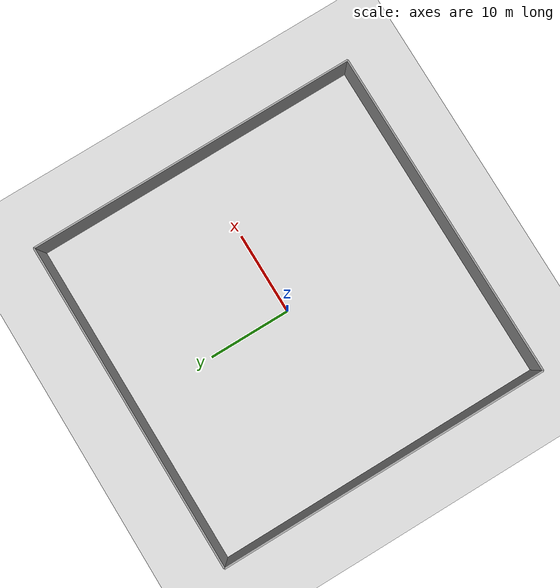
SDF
<?xml version='1.0' encoding='utf-8'?>
<sdf version="1.6">
    <world name="empty_world">
        <gravity>0 0 -9.8</gravity>
        <physics default="0" name="default_physics" type="ode">
            <max_step_size>0.01</max_step_size>
            <real_time_factor>1</real_time_factor>
            <real_time_update_rate>1000</real_time_update_rate>
            <ode>
                <solver>
                    <type>quick</type>
                    <iters>50</iters>
                    <sor>1.3</sor>
                </solver>
                <constraints>
                    <cfm>0.0</cfm>
                    <erp>0.2</erp>
                    <contact_max_correcting_vel>100.0</contact_max_correcting_vel>
                    <contact_surface_layer>0.001</contact_surface_layer>
                </constraints>
            </ode>
        </physics>

        <!-- Simple ground plane -->
        <model name="ground_plane">
            <static>true</static>
            <link name="link">
                <collision name="collision">
                    <geometry>
                        <plane>
                            <normal>0 0 1</normal>
                            <size>100 100</size>
                        </plane>
                    </geometry>
                </collision>
                <visual name="visual">
                    <geometry>
                        <plane>
                            <normal>0 0 1</normal>
                            <size>100 100</size>
                        </plane>
                    </geometry>
                    <material>
                        <ambient>0.8 0.8 0.8 1</ambient>
                        <diffuse>0.8 0.8 0.8 1</diffuse>
                        <specular>0.2 0.2 0.2 1</specular>
                    </material>
                </visual>
            </link>
        </model>

        <!-- Simple walls for testing -->
        <model name="wall_north">
            <static>true</static>
            <pose>0 20 2 0 0 0</pose>
            <link name="link">
                <collision name="collision">
                    <geometry>
                        <box>
                            <size>40 0.2 4</size>
                        </box>
                    </geometry>
                </collision>
                <visual name="visual">
                    <geometry>
                        <box>
                            <size>40 0.2 4</size>
                        </box>
                    </geometry>
                    <material>
                        <ambient>0.6 0.6 0.6 1</ambient>
                        <diffuse>0.6 0.6 0.6 1</diffuse>
                    </material>
                </visual>
            </link>
        </model>

        <model name="wall_south">
            <static>true</static>
            <pose>0 -20 2 0 0 0</pose>
            <link name="link">
                <collision name="collision">
                    <geometry>
                        <box>
                            <size>40 0.2 4</size>
                        </box>
                    </geometry>
                </collision>
                <visual name="visual">
                    <geometry>
                        <box>
                            <size>40 0.2 4</size>
                        </box>
                    </geometry>
                    <material>
                        <ambient>0.6 0.6 0.6 1</ambient>
                        <diffuse>0.6 0.6 0.6 1</diffuse>
                    </material>
                </visual>
            </link>
        </model>

        <model name="wall_east">
            <static>true</static>
            <pose>20 0 2 0 0 0</pose>
            <link name="link">
                <collision name="collision">
                    <geometry>
                        <box>
                            <size>0.2 40 4</size>
                        </box>
                    </geometry>
                </collision>
                <visual name="visual">
                    <geometry>
                        <box>
                            <size>0.2 40 4</size>
                        </box>
                    </geometry>
                    <material>
                        <ambient>0.6 0.6 0.6 1</ambient>
                        <diffuse>0.6 0.6 0.6 1</diffuse>
                    </material>
                </visual>
            </link>
        </model>

        <model name="wall_west">
            <static>true</static>
            <pose>-20 0 2 0 0 0</pose>
            <link name="link">
                <collision name="collision">
                    <geometry>
                        <box>
                            <size>0.2 40 4</size>
                        </box>
                    </geometry>
                </collision>
                <visual name="visual">
                    <geometry>
                        <box>
                            <size>0.2 40 4</size>
                        </box>
                    </geometry>
                    <material>
                        <ambient>0.6 0.6 0.6 1</ambient>
                        <diffuse>0.6 0.6 0.6 1</diffuse>
                    </material>
                </visual>
            </link>
        </model>

        <!-- Lighting -->
        <light type="directional" name="sun">
            <cast_shadows>true</cast_shadows>
            <pose>0 0 10 0 0 0</pose>
            <diffuse>0.8 0.8 0.8 1</diffuse>
            <specular>0.2 0.2 0.2 1</specular>
            <attenuation>
                <range>1000</range>
                <constant>0.9</constant>
                <linear>0.01</linear>
                <quadratic>0.001</quadratic>
            </attenuation>
            <direction>-0.5 0.1 -0.9</direction>
        </light>
    </world>
</sdf>
